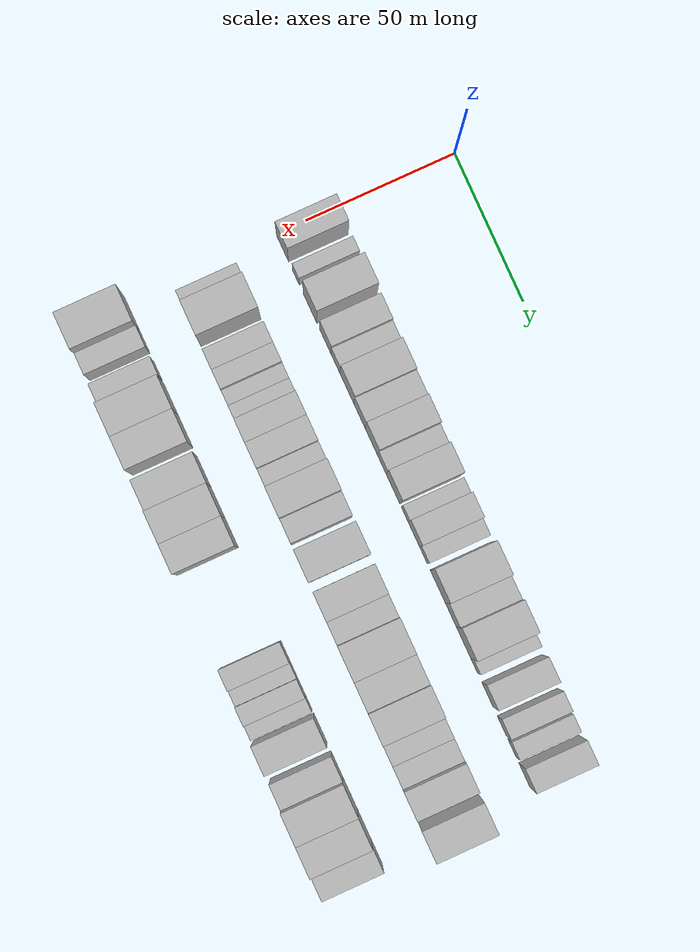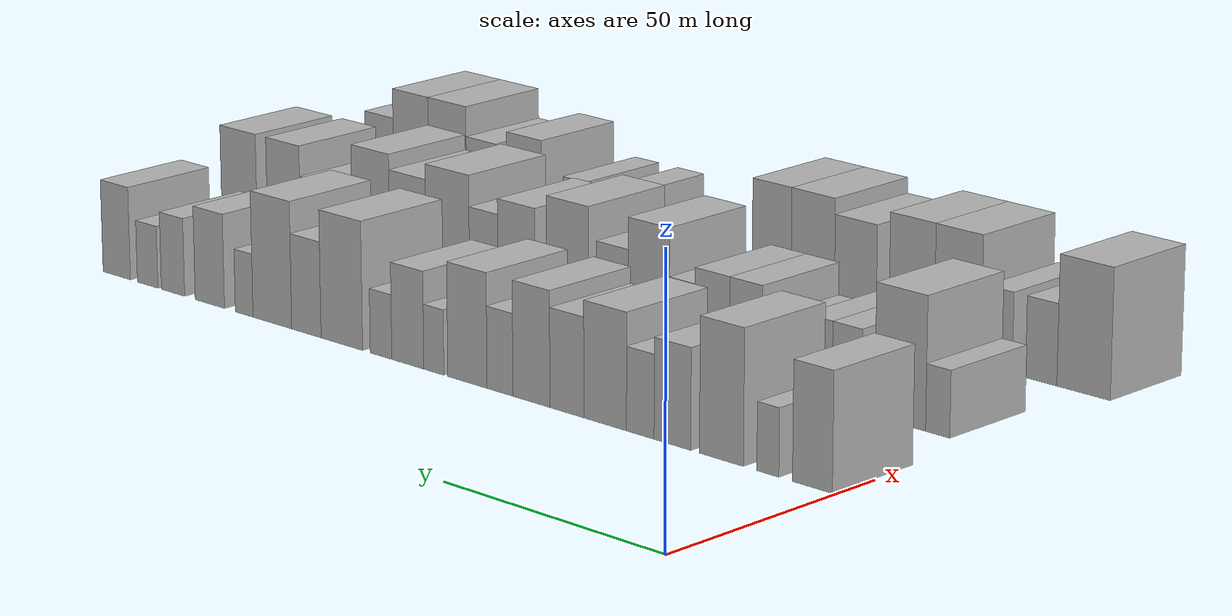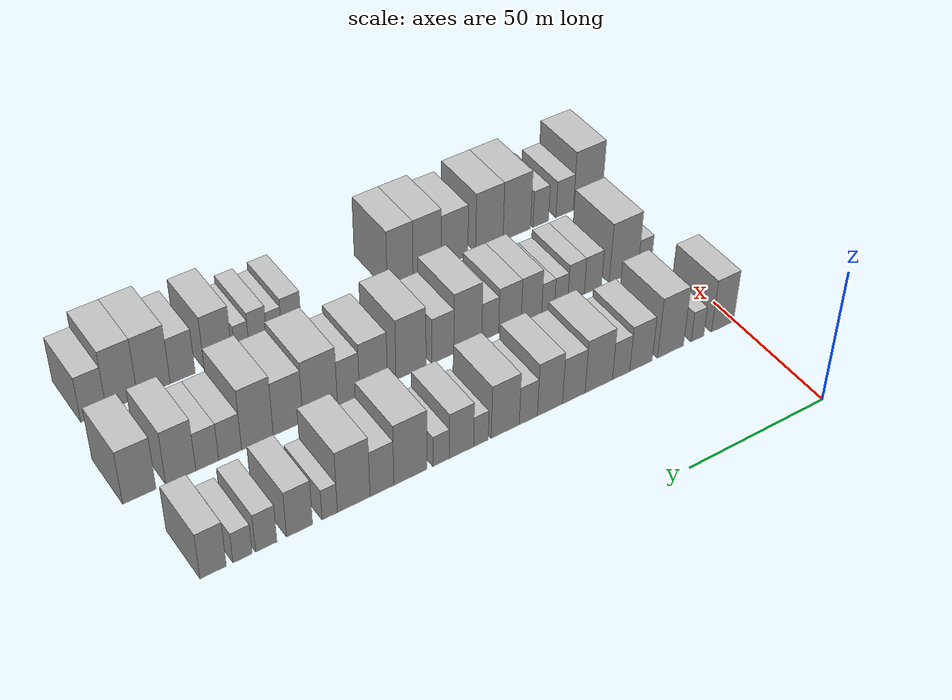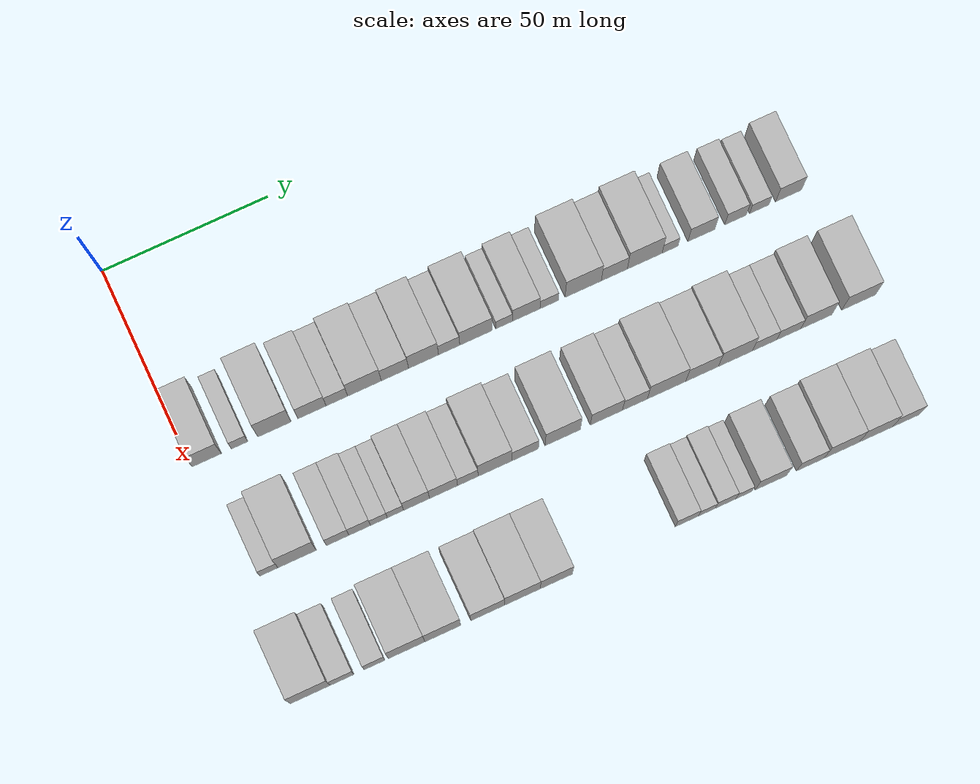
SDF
<sdf version="1.6">
 <world name="default">
  <model name="building_38">
   <static>1</static>
   <pose>50.0000 4.8962 0 0.000000 0.000000 0.000000</pose>
   <link name="link">
    <pose>0 0 10.50 0 0 0</pose>
    <collision name="collision"><geometry><box><size>20.0000 8.7420 21.0000</size></box></geometry></collision>
    <visual name="visual">
     <cast_shadows>0</cast_shadows>
     <geometry><box><size>20.0000 8.7420 21.0000</size></box></geometry>
     <material>
      <script>
       <uri>model://HANNAS_wall/materials/scripts</uri>
       <uri>model://HANNAS_wall/materials/textures</uri>
       <name>vrc/HANNAS_wall</name>
      </script>
     </material>
    </visual>
   </link>
  </model>
  <model name="building_39">
   <static>1</static>
   <pose>50.0000 14.7177 0 0.000000 0.000000 0.000000</pose>
   <link name="link">
    <pose>0 0 6.00 0 0 0</pose>
    <collision name="collision"><geometry><box><size>20.0000 4.9009 12.0000</size></box></geometry></collision>
    <visual name="visual">
     <cast_shadows>0</cast_shadows>
     <geometry><box><size>20.0000 4.9009 12.0000</size></box></geometry>
     <material>
      <script>
       <uri>model://HANNAS_wall/materials/scripts</uri>
       <uri>model://HANNAS_wall/materials/textures</uri>
       <name>vrc/HANNAS_wall</name>
      </script>
     </material>
    </visual>
   </link>
  </model>
  <model name="building_40">
   <static>1</static>
   <pose>50.0000 25.1463 0 0.000000 0.000000 0.000000</pose>
   <link name="link">
    <pose>0 0 12.00 0 0 0</pose>
    <collision name="collision"><geometry><box><size>20.0000 9.9563 24.0000</size></box></geometry></collision>
    <visual name="visual">
     <cast_shadows>0</cast_shadows>
     <geometry><box><size>20.0000 9.9563 24.0000</size></box></geometry>
     <material>
      <script>
       <uri>model://HANNAS_wall/materials/scripts</uri>
       <uri>model://HANNAS_wall/materials/textures</uri>
       <name>vrc/HANNAS_wall</name>
      </script>
     </material>
    </visual>
   </link>
  </model>
  <model name="building_41">
   <static>1</static>
   <pose>50.0000 36.3663 0 0.000000 0.000000 0.000000</pose>
   <link name="link">
    <pose>0 0 9.00 0 0 0</pose>
    <collision name="collision"><geometry><box><size>20.0000 8.4837 18.0000</size></box></geometry></collision>
    <visual name="visual">
     <cast_shadows>0</cast_shadows>
     <geometry><box><size>20.0000 8.4837 18.0000</size></box></geometry>
     <material>
      <script>
       <uri>model://HANNAS_wall/materials/scripts</uri>
       <uri>model://HANNAS_wall/materials/textures</uri>
       <name>vrc/HANNAS_wall</name>
      </script>
     </material>
    </visual>
   </link>
  </model>
  <model name="building_42">
   <static>1</static>
   <pose>50.0000 43.8344 0 0.000000 0.000000 0.000000</pose>
   <link name="link">
    <pose>0 0 7.50 0 0 0</pose>
    <collision name="collision"><geometry><box><size>20.0000 6.4525 15.0000</size></box></geometry></collision>
    <visual name="visual">
     <cast_shadows>0</cast_shadows>
     <geometry><box><size>20.0000 6.4525 15.0000</size></box></geometry>
     <material>
      <script>
       <uri>model://HANNAS_wall/materials/scripts</uri>
       <uri>model://HANNAS_wall/materials/textures</uri>
       <name>vrc/HANNAS_wall</name>
      </script>
     </material>
    </visual>
   </link>
  </model>
  <model name="building_43">
   <static>1</static>
   <pose>50.0000 52.1158 0 0.000000 0.000000 0.000000</pose>
   <link name="link">
    <pose>0 0 10.50 0 0 0</pose>
    <collision name="collision"><geometry><box><size>20.0000 10.1102 21.0000</size></box></geometry></collision>
    <visual name="visual">
     <cast_shadows>0</cast_shadows>
     <geometry><box><size>20.0000 10.1102 21.0000</size></box></geometry>
     <material>
      <script>
       <uri>model://HANNAS_wall/materials/scripts</uri>
       <uri>model://HANNAS_wall/materials/textures</uri>
       <name>vrc/HANNAS_wall</name>
      </script>
     </material>
    </visual>
   </link>
  </model>
  <model name="building_44">
   <static>1</static>
   <pose>50.0000 61.2699 0 0.000000 0.000000 0.000000</pose>
   <link name="link">
    <pose>0 0 9.00 0 0 0</pose>
    <collision name="collision"><geometry><box><size>20.0000 8.1979 18.0000</size></box></geometry></collision>
    <visual name="visual">
     <cast_shadows>0</cast_shadows>
     <geometry><box><size>20.0000 8.1979 18.0000</size></box></geometry>
     <material>
      <script>
       <uri>model://HANNAS_wall/materials/scripts</uri>
       <uri>model://HANNAS_wall/materials/textures</uri>
       <name>vrc/HANNAS_wall</name>
      </script>
     </material>
    </visual>
   </link>
  </model>
  <model name="building_45">
   <static>1</static>
   <pose>50.0000 69.8804 0 0.000000 0.000000 0.000000</pose>
   <link name="link">
    <pose>0 0 10.50 0 0 0</pose>
    <collision name="collision"><geometry><box><size>20.0000 9.0231 21.0000</size></box></geometry></collision>
    <visual name="visual">
     <cast_shadows>0</cast_shadows>
     <geometry><box><size>20.0000 9.0231 21.0000</size></box></geometry>
     <material>
      <script>
       <uri>model://HANNAS_wall/materials/scripts</uri>
       <uri>model://HANNAS_wall/materials/textures</uri>
       <name>vrc/HANNAS_wall</name>
      </script>
     </material>
    </visual>
   </link>
  </model>
  <model name="building_46">
   <static>1</static>
   <pose>50.0000 77.6053 0 0.000000 0.000000 0.000000</pose>
   <link name="link">
    <pose>0 0 7.50 0 0 0</pose>
    <collision name="collision"><geometry><box><size>20.0000 6.4268 15.0000</size></box></geometry></collision>
    <visual name="visual">
     <cast_shadows>0</cast_shadows>
     <geometry><box><size>20.0000 6.4268 15.0000</size></box></geometry>
     <material>
      <script>
       <uri>model://HANNAS_wall/materials/scripts</uri>
       <uri>model://HANNAS_wall/materials/textures</uri>
       <name>vrc/HANNAS_wall</name>
      </script>
     </material>
    </visual>
   </link>
  </model>
  <model name="building_47">
   <static>1</static>
   <pose>50.0000 85.7421 0 0.000000 0.000000 0.000000</pose>
   <link name="link">
    <pose>0 0 10.50 0 0 0</pose>
    <collision name="collision"><geometry><box><size>20.0000 9.8468 21.0000</size></box></geometry></collision>
    <visual name="visual">
     <cast_shadows>0</cast_shadows>
     <geometry><box><size>20.0000 9.8468 21.0000</size></box></geometry>
     <material>
      <script>
       <uri>model://HANNAS_wall/materials/scripts</uri>
       <uri>model://HANNAS_wall/materials/textures</uri>
       <name>vrc/HANNAS_wall</name>
      </script>
     </material>
    </visual>
   </link>
  </model>
  <model name="building_48">
   <static>1</static>
   <pose>50.0000 94.1984 0 0.000000 0.000000 0.000000</pose>
   <link name="link">
    <pose>0 0 6.00 0 0 0</pose>
    <collision name="collision"><geometry><box><size>20.0000 5.0657 12.0000</size></box></geometry></collision>
    <visual name="visual">
     <cast_shadows>0</cast_shadows>
     <geometry><box><size>20.0000 5.0657 12.0000</size></box></geometry>
     <material>
      <script>
       <uri>model://HANNAS_wall/materials/scripts</uri>
       <uri>model://HANNAS_wall/materials/textures</uri>
       <name>vrc/HANNAS_wall</name>
      </script>
     </material>
    </visual>
   </link>
  </model>
  <model name="building_49">
   <static>1</static>
   <pose>50.0000 100.8727 0 0.000000 0.000000 0.000000</pose>
   <link name="link">
    <pose>0 0 9.00 0 0 0</pose>
    <collision name="collision"><geometry><box><size>20.0000 8.2829 18.0000</size></box></geometry></collision>
    <visual name="visual">
     <cast_shadows>0</cast_shadows>
     <geometry><box><size>20.0000 8.2829 18.0000</size></box></geometry>
     <material>
      <script>
       <uri>model://HANNAS_wall/materials/scripts</uri>
       <uri>model://HANNAS_wall/materials/textures</uri>
       <name>vrc/HANNAS_wall</name>
      </script>
     </material>
    </visual>
   </link>
  </model>
  <model name="building_50">
   <static>1</static>
   <pose>50.0000 107.8115 0 0.000000 0.000000 0.000000</pose>
   <link name="link">
    <pose>0 0 6.00 0 0 0</pose>
    <collision name="collision"><geometry><box><size>20.0000 5.5947 12.0000</size></box></geometry></collision>
    <visual name="visual">
     <cast_shadows>0</cast_shadows>
     <geometry><box><size>20.0000 5.5947 12.0000</size></box></geometry>
     <material>
      <script>
       <uri>model://HANNAS_wall/materials/scripts</uri>
       <uri>model://HANNAS_wall/materials/textures</uri>
       <name>vrc/HANNAS_wall</name>
      </script>
     </material>
    </visual>
   </link>
  </model>
  <model name="building_51">
   <static>1</static>
   <pose>50.0000 118.1007 0 0.000000 0.000000 0.000000</pose>
   <link name="link">
    <pose>0 0 12.00 0 0 0</pose>
    <collision name="collision"><geometry><box><size>20.0000 10.9835 24.0000</size></box></geometry></collision>
    <visual name="visual">
     <cast_shadows>0</cast_shadows>
     <geometry><box><size>20.0000 10.9835 24.0000</size></box></geometry>
     <material>
      <script>
       <uri>model://HANNAS_wall/materials/scripts</uri>
       <uri>model://HANNAS_wall/materials/textures</uri>
       <name>vrc/HANNAS_wall</name>
      </script>
     </material>
    </visual>
   </link>
  </model>
  <model name="building_52">
   <static>1</static>
   <pose>50.0000 127.5272 0 0.000000 0.000000 0.000000</pose>
   <link name="link">
    <pose>0 0 9.00 0 0 0</pose>
    <collision name="collision"><geometry><box><size>20.0000 7.8695 18.0000</size></box></geometry></collision>
    <visual name="visual">
     <cast_shadows>0</cast_shadows>
     <geometry><box><size>20.0000 7.8695 18.0000</size></box></geometry>
     <material>
      <script>
       <uri>model://HANNAS_wall/materials/scripts</uri>
       <uri>model://HANNAS_wall/materials/textures</uri>
       <name>vrc/HANNAS_wall</name>
      </script>
     </material>
    </visual>
   </link>
  </model>
  <model name="building_53">
   <static>1</static>
   <pose>50.0000 136.7461 0 0.000000 0.000000 0.000000</pose>
   <link name="link">
    <pose>0 0 12.00 0 0 0</pose>
    <collision name="collision"><geometry><box><size>20.0000 10.5684 24.0000</size></box></geometry></collision>
    <visual name="visual">
     <cast_shadows>0</cast_shadows>
     <geometry><box><size>20.0000 10.5684 24.0000</size></box></geometry>
     <material>
      <script>
       <uri>model://HANNAS_wall/materials/scripts</uri>
       <uri>model://HANNAS_wall/materials/textures</uri>
       <name>vrc/HANNAS_wall</name>
      </script>
     </material>
    </visual>
   </link>
  </model>
  <model name="building_54">
   <static>1</static>
   <pose>50.0000 144.4675 0 0.000000 0.000000 0.000000</pose>
   <link name="link">
    <pose>0 0 6.00 0 0 0</pose>
    <collision name="collision"><geometry><box><size>20.0000 4.8745 12.0000</size></box></geometry></collision>
    <visual name="visual">
     <cast_shadows>0</cast_shadows>
     <geometry><box><size>20.0000 4.8745 12.0000</size></box></geometry>
     <material>
      <script>
       <uri>model://HANNAS_wall/materials/scripts</uri>
       <uri>model://HANNAS_wall/materials/textures</uri>
       <name>vrc/HANNAS_wall</name>
      </script>
     </material>
    </visual>
   </link>
  </model>
  <model name="building_55">
   <static>1</static>
   <pose>50.0000 154.0031 0 0.000000 0.000000 0.000000</pose>
   <link name="link">
    <pose>0 0 9.00 0 0 0</pose>
    <collision name="collision"><geometry><box><size>20.0000 8.1967 18.0000</size></box></geometry></collision>
    <visual name="visual">
     <cast_shadows>0</cast_shadows>
     <geometry><box><size>20.0000 8.1967 18.0000</size></box></geometry>
     <material>
      <script>
       <uri>model://HANNAS_wall/materials/scripts</uri>
       <uri>model://HANNAS_wall/materials/textures</uri>
       <name>vrc/HANNAS_wall</name>
      </script>
     </material>
    </visual>
   </link>
  </model>
  <model name="building_56">
   <static>1</static>
   <pose>50.0000 164.4056 0 0.000000 0.000000 0.000000</pose>
   <link name="link">
    <pose>0 0 7.50 0 0 0</pose>
    <collision name="collision"><geometry><box><size>20.0000 6.6082 15.0000</size></box></geometry></collision>
    <visual name="visual">
     <cast_shadows>0</cast_shadows>
     <geometry><box><size>20.0000 6.6082 15.0000</size></box></geometry>
     <material>
      <script>
       <uri>model://HANNAS_wall/materials/scripts</uri>
       <uri>model://HANNAS_wall/materials/textures</uri>
       <name>vrc/HANNAS_wall</name>
      </script>
     </material>
    </visual>
   </link>
  </model>
  <model name="building_57">
   <static>1</static>
   <pose>50.0000 171.6649 0 0.000000 0.000000 0.000000</pose>
   <link name="link">
    <pose>0 0 6.00 0 0 0</pose>
    <collision name="collision"><geometry><box><size>20.0000 5.9103 12.0000</size></box></geometry></collision>
    <visual name="visual">
     <cast_shadows>0</cast_shadows>
     <geometry><box><size>20.0000 5.9103 12.0000</size></box></geometry>
     <material>
      <script>
       <uri>model://HANNAS_wall/materials/scripts</uri>
       <uri>model://HANNAS_wall/materials/textures</uri>
       <name>vrc/HANNAS_wall</name>
      </script>
     </material>
    </visual>
   </link>
  </model>
  <model name="building_58">
   <static>1</static>
   <pose>50.0000 180.5965 0 0.000000 0.000000 0.000000</pose>
   <link name="link">
    <pose>0 0 9.00 0 0 0</pose>
    <collision name="collision"><geometry><box><size>20.0000 7.9528 18.0000</size></box></geometry></collision>
    <visual name="visual">
     <cast_shadows>0</cast_shadows>
     <geometry><box><size>20.0000 7.9528 18.0000</size></box></geometry>
     <material>
      <script>
       <uri>model://HANNAS_wall/materials/scripts</uri>
       <uri>model://HANNAS_wall/materials/textures</uri>
       <name>vrc/HANNAS_wall</name>
      </script>
     </material>
    </visual>
   </link>
  </model>
  <model name="building_122">
   <static>1</static>
   <pose>85.0000 7.8334 0 0.000000 0.000000 0.000000</pose>
   <link name="link">
    <pose>0 0 6.00 0 0 0</pose>
    <collision name="collision"><geometry><box><size>20.0000 5.3609 12.0000</size></box></geometry></collision>
    <visual name="visual">
     <cast_shadows>0</cast_shadows>
     <geometry><box><size>20.0000 5.3609 12.0000</size></box></geometry>
     <material>
      <script>
       <uri>model://HANNAS_wall/materials/scripts</uri>
       <uri>model://HANNAS_wall/materials/textures</uri>
       <name>vrc/HANNAS_wall</name>
      </script>
     </material>
    </visual>
   </link>
  </model>
  <model name="building_123">
   <static>1</static>
   <pose>85.0000 16.2155 0 0.000000 0.000000 0.000000</pose>
   <link name="link">
    <pose>0 0 12.00 0 0 0</pose>
    <collision name="collision"><geometry><box><size>20.0000 11.4034 24.0000</size></box></geometry></collision>
    <visual name="visual">
     <cast_shadows>0</cast_shadows>
     <geometry><box><size>20.0000 11.4034 24.0000</size></box></geometry>
     <material>
      <script>
       <uri>model://HANNAS_wall/materials/scripts</uri>
       <uri>model://HANNAS_wall/materials/textures</uri>
       <name>vrc/HANNAS_wall</name>
      </script>
     </material>
    </visual>
   </link>
  </model>
  <model name="building_124">
   <static>1</static>
   <pose>85.0000 28.2920 0 0.000000 0.000000 0.000000</pose>
   <link name="link">
    <pose>0 0 7.50 0 0 0</pose>
    <collision name="collision"><geometry><box><size>20.0000 6.7495 15.0000</size></box></geometry></collision>
    <visual name="visual">
     <cast_shadows>0</cast_shadows>
     <geometry><box><size>20.0000 6.7495 15.0000</size></box></geometry>
     <material>
      <script>
       <uri>model://HANNAS_wall/materials/scripts</uri>
       <uri>model://HANNAS_wall/materials/textures</uri>
       <name>vrc/HANNAS_wall</name>
      </script>
     </material>
    </visual>
   </link>
  </model>
  <model name="building_125">
   <static>1</static>
   <pose>85.0000 34.8657 0 0.000000 0.000000 0.000000</pose>
   <link name="link">
    <pose>0 0 7.50 0 0 0</pose>
    <collision name="collision"><geometry><box><size>20.0000 6.3980 15.0000</size></box></geometry></collision>
    <visual name="visual">
     <cast_shadows>0</cast_shadows>
     <geometry><box><size>20.0000 6.3980 15.0000</size></box></geometry>
     <material>
      <script>
       <uri>model://HANNAS_wall/materials/scripts</uri>
       <uri>model://HANNAS_wall/materials/textures</uri>
       <name>vrc/HANNAS_wall</name>
      </script>
     </material>
    </visual>
   </link>
  </model>
  <model name="building_126">
   <static>1</static>
   <pose>85.0000 40.5719 0 0.000000 0.000000 0.000000</pose>
   <link name="link">
    <pose>0 0 6.00 0 0 0</pose>
    <collision name="collision"><geometry><box><size>20.0000 5.0143 12.0000</size></box></geometry></collision>
    <visual name="visual">
     <cast_shadows>0</cast_shadows>
     <geometry><box><size>20.0000 5.0143 12.0000</size></box></geometry>
     <material>
      <script>
       <uri>model://HANNAS_wall/materials/scripts</uri>
       <uri>model://HANNAS_wall/materials/textures</uri>
       <name>vrc/HANNAS_wall</name>
      </script>
     </material>
    </visual>
   </link>
  </model>
  <model name="building_127">
   <static>1</static>
   <pose>85.0000 45.5158 0 0.000000 0.000000 0.000000</pose>
   <link name="link">
    <pose>0 0 6.00 0 0 0</pose>
    <collision name="collision"><geometry><box><size>20.0000 4.8736 12.0000</size></box></geometry></collision>
    <visual name="visual">
     <cast_shadows>0</cast_shadows>
     <geometry><box><size>20.0000 4.8736 12.0000</size></box></geometry>
     <material>
      <script>
       <uri>model://HANNAS_wall/materials/scripts</uri>
       <uri>model://HANNAS_wall/materials/textures</uri>
       <name>vrc/HANNAS_wall</name>
      </script>
     </material>
    </visual>
   </link>
  </model>
  <model name="building_128">
   <static>1</static>
   <pose>85.0000 51.8381 0 0.000000 0.000000 0.000000</pose>
   <link name="link">
    <pose>0 0 9.00 0 0 0</pose>
    <collision name="collision"><geometry><box><size>20.0000 7.7709 18.0000</size></box></geometry></collision>
    <visual name="visual">
     <cast_shadows>0</cast_shadows>
     <geometry><box><size>20.0000 7.7709 18.0000</size></box></geometry>
     <material>
      <script>
       <uri>model://HANNAS_wall/materials/scripts</uri>
       <uri>model://HANNAS_wall/materials/textures</uri>
       <name>vrc/HANNAS_wall</name>
      </script>
     </material>
    </visual>
   </link>
  </model>
  <model name="building_129">
   <static>1</static>
   <pose>85.0000 59.9154 0 0.000000 0.000000 0.000000</pose>
   <link name="link">
    <pose>0 0 9.00 0 0 0</pose>
    <collision name="collision"><geometry><box><size>20.0000 8.3837 18.0000</size></box></geometry></collision>
    <visual name="visual">
     <cast_shadows>0</cast_shadows>
     <geometry><box><size>20.0000 8.3837 18.0000</size></box></geometry>
     <material>
      <script>
       <uri>model://HANNAS_wall/materials/scripts</uri>
       <uri>model://HANNAS_wall/materials/textures</uri>
       <name>vrc/HANNAS_wall</name>
      </script>
     </material>
    </visual>
   </link>
  </model>
  <model name="building_130">
   <static>1</static>
   <pose>85.0000 67.2110 0 0.000000 0.000000 0.000000</pose>
   <link name="link">
    <pose>0 0 7.50 0 0 0</pose>
    <collision name="collision"><geometry><box><size>20.0000 6.2076 15.0000</size></box></geometry></collision>
    <visual name="visual">
     <cast_shadows>0</cast_shadows>
     <geometry><box><size>20.0000 6.2076 15.0000</size></box></geometry>
     <material>
      <script>
       <uri>model://HANNAS_wall/materials/scripts</uri>
       <uri>model://HANNAS_wall/materials/textures</uri>
       <name>vrc/HANNAS_wall</name>
      </script>
     </material>
    </visual>
   </link>
  </model>
  <model name="building_131">
   <static>1</static>
   <pose>85.0000 75.3964 0 0.000000 0.000000 0.000000</pose>
   <link name="link">
    <pose>0 0 12.00 0 0 0</pose>
    <collision name="collision"><geometry><box><size>20.0000 10.1631 24.0000</size></box></geometry></collision>
    <visual name="visual">
     <cast_shadows>0</cast_shadows>
     <geometry><box><size>20.0000 10.1631 24.0000</size></box></geometry>
     <material>
      <script>
       <uri>model://HANNAS_wall/materials/scripts</uri>
       <uri>model://HANNAS_wall/materials/textures</uri>
       <name>vrc/HANNAS_wall</name>
      </script>
     </material>
    </visual>
   </link>
  </model>
  <model name="building_132">
   <static>1</static>
   <pose>85.0000 84.4402 0 0.000000 0.000000 0.000000</pose>
   <link name="link">
    <pose>0 0 9.00 0 0 0</pose>
    <collision name="collision"><geometry><box><size>20.0000 7.9245 18.0000</size></box></geometry></collision>
    <visual name="visual">
     <cast_shadows>0</cast_shadows>
     <geometry><box><size>20.0000 7.9245 18.0000</size></box></geometry>
     <material>
      <script>
       <uri>model://HANNAS_wall/materials/scripts</uri>
       <uri>model://HANNAS_wall/materials/textures</uri>
       <name>vrc/HANNAS_wall</name>
      </script>
     </material>
    </visual>
   </link>
  </model>
  <model name="building_133">
   <static>1</static>
   <pose>85.0000 95.7066 0 0.000000 0.000000 0.000000</pose>
   <link name="link">
    <pose>0 0 12.00 0 0 0</pose>
    <collision name="collision"><geometry><box><size>20.0000 10.6085 24.0000</size></box></geometry></collision>
    <visual name="visual">
     <cast_shadows>0</cast_shadows>
     <geometry><box><size>20.0000 10.6085 24.0000</size></box></geometry>
     <material>
      <script>
       <uri>model://HANNAS_wall/materials/scripts</uri>
       <uri>model://HANNAS_wall/materials/textures</uri>
       <name>vrc/HANNAS_wall</name>
      </script>
     </material>
    </visual>
   </link>
  </model>
  <model name="building_134">
   <static>1</static>
   <pose>85.0000 108.8487 0 0.000000 0.000000 0.000000</pose>
   <link name="link">
    <pose>0 0 10.50 0 0 0</pose>
    <collision name="collision"><geometry><box><size>20.0000 9.6756 21.0000</size></box></geometry></collision>
    <visual name="visual">
     <cast_shadows>0</cast_shadows>
     <geometry><box><size>20.0000 9.6756 21.0000</size></box></geometry>
     <material>
      <script>
       <uri>model://HANNAS_wall/materials/scripts</uri>
       <uri>model://HANNAS_wall/materials/textures</uri>
       <name>vrc/HANNAS_wall</name>
      </script>
     </material>
    </visual>
   </link>
  </model>
  <model name="building_135">
   <static>1</static>
   <pose>85.0000 117.4447 0 0.000000 0.000000 0.000000</pose>
   <link name="link">
    <pose>0 0 9.00 0 0 0</pose>
    <collision name="collision"><geometry><box><size>20.0000 7.5165 18.0000</size></box></geometry></collision>
    <visual name="visual">
     <cast_shadows>0</cast_shadows>
     <geometry><box><size>20.0000 7.5165 18.0000</size></box></geometry>
     <material>
      <script>
       <uri>model://HANNAS_wall/materials/scripts</uri>
       <uri>model://HANNAS_wall/materials/textures</uri>
       <name>vrc/HANNAS_wall</name>
      </script>
     </material>
    </visual>
   </link>
  </model>
  <model name="building_136">
   <static>1</static>
   <pose>85.0000 127.0059 0 0.000000 0.000000 0.000000</pose>
   <link name="link">
    <pose>0 0 12.00 0 0 0</pose>
    <collision name="collision"><geometry><box><size>20.0000 11.6059 24.0000</size></box></geometry></collision>
    <visual name="visual">
     <cast_shadows>0</cast_shadows>
     <geometry><box><size>20.0000 11.6059 24.0000</size></box></geometry>
     <material>
      <script>
       <uri>model://HANNAS_wall/materials/scripts</uri>
       <uri>model://HANNAS_wall/materials/textures</uri>
       <name>vrc/HANNAS_wall</name>
      </script>
     </material>
    </visual>
   </link>
  </model>
  <model name="building_137">
   <static>1</static>
   <pose>85.0000 137.7514 0 0.000000 0.000000 0.000000</pose>
   <link name="link">
    <pose>0 0 10.50 0 0 0</pose>
    <collision name="collision"><geometry><box><size>20.0000 9.8850 21.0000</size></box></geometry></collision>
    <visual name="visual">
     <cast_shadows>0</cast_shadows>
     <geometry><box><size>20.0000 9.8850 21.0000</size></box></geometry>
     <material>
      <script>
       <uri>model://HANNAS_wall/materials/scripts</uri>
       <uri>model://HANNAS_wall/materials/textures</uri>
       <name>vrc/HANNAS_wall</name>
      </script>
     </material>
    </visual>
   </link>
  </model>
  <model name="building_138">
   <static>1</static>
   <pose>85.0000 147.8547 0 0.000000 0.000000 0.000000</pose>
   <link name="link">
    <pose>0 0 12.00 0 0 0</pose>
    <collision name="collision"><geometry><box><size>20.0000 10.3217 24.0000</size></box></geometry></collision>
    <visual name="visual">
     <cast_shadows>0</cast_shadows>
     <geometry><box><size>20.0000 10.3217 24.0000</size></box></geometry>
     <material>
      <script>
       <uri>model://HANNAS_wall/materials/scripts</uri>
       <uri>model://HANNAS_wall/materials/textures</uri>
       <name>vrc/HANNAS_wall</name>
      </script>
     </material>
    </visual>
   </link>
  </model>
  <model name="building_139">
   <static>1</static>
   <pose>85.0000 156.7014 0 0.000000 0.000000 0.000000</pose>
   <link name="link">
    <pose>0 0 7.50 0 0 0</pose>
    <collision name="collision"><geometry><box><size>20.0000 7.3718 15.0000</size></box></geometry></collision>
    <visual name="visual">
     <cast_shadows>0</cast_shadows>
     <geometry><box><size>20.0000 7.3718 15.0000</size></box></geometry>
     <material>
      <script>
       <uri>model://HANNAS_wall/materials/scripts</uri>
       <uri>model://HANNAS_wall/materials/textures</uri>
       <name>vrc/HANNAS_wall</name>
      </script>
     </material>
    </visual>
   </link>
  </model>
  <model name="building_140">
   <static>1</static>
   <pose>85.0000 164.0363 0 0.000000 0.000000 0.000000</pose>
   <link name="link">
    <pose>0 0 7.50 0 0 0</pose>
    <collision name="collision"><geometry><box><size>20.0000 7.2979 15.0000</size></box></geometry></collision>
    <visual name="visual">
     <cast_shadows>0</cast_shadows>
     <geometry><box><size>20.0000 7.2979 15.0000</size></box></geometry>
     <material>
      <script>
       <uri>model://HANNAS_wall/materials/scripts</uri>
       <uri>model://HANNAS_wall/materials/textures</uri>
       <name>vrc/HANNAS_wall</name>
      </script>
     </material>
    </visual>
   </link>
  </model>
  <model name="building_141">
   <static>1</static>
   <pose>85.0000 172.4159 0 0.000000 0.000000 0.000000</pose>
   <link name="link">
    <pose>0 0 10.50 0 0 0</pose>
    <collision name="collision"><geometry><box><size>20.0000 9.4614 21.0000</size></box></geometry></collision>
    <visual name="visual">
     <cast_shadows>0</cast_shadows>
     <geometry><box><size>20.0000 9.4614 21.0000</size></box></geometry>
     <material>
      <script>
       <uri>model://HANNAS_wall/materials/scripts</uri>
       <uri>model://HANNAS_wall/materials/textures</uri>
       <name>vrc/HANNAS_wall</name>
      </script>
     </material>
    </visual>
   </link>
  </model>
  <model name="building_142">
   <static>1</static>
   <pose>85.0000 185.2955 0 0.000000 0.000000 0.000000</pose>
   <link name="link">
    <pose>0 0 10.50 0 0 0</pose>
    <collision name="collision"><geometry><box><size>20.0000 10.2978 21.0000</size></box></geometry></collision>
    <visual name="visual">
     <cast_shadows>0</cast_shadows>
     <geometry><box><size>20.0000 10.2978 21.0000</size></box></geometry>
     <material>
      <script>
       <uri>model://HANNAS_wall/materials/scripts</uri>
       <uri>model://HANNAS_wall/materials/textures</uri>
       <name>vrc/HANNAS_wall</name>
      </script>
     </material>
    </visual>
   </link>
  </model>
  <model name="building_202">
   <static>1</static>
   <pose>120.0000 4.3970 0 0.000000 0.000000 0.000000</pose>
   <link name="link">
    <pose>0 0 12.00 0 0 0</pose>
    <collision name="collision"><geometry><box><size>20.0000 11.8130 24.0000</size></box></geometry></collision>
    <visual name="visual">
     <cast_shadows>0</cast_shadows>
     <geometry><box><size>20.0000 11.8130 24.0000</size></box></geometry>
     <material>
      <script>
       <uri>model://HANNAS_wall/materials/scripts</uri>
       <uri>model://HANNAS_wall/materials/textures</uri>
       <name>vrc/HANNAS_wall</name>
      </script>
     </material>
    </visual>
   </link>
  </model>
  <model name="building_203">
   <static>1</static>
   <pose>120.0000 13.8263 0 0.000000 0.000000 0.000000</pose>
   <link name="link">
    <pose>0 0 7.50 0 0 0</pose>
    <collision name="collision"><geometry><box><size>20.0000 7.0456 15.0000</size></box></geometry></collision>
    <visual name="visual">
     <cast_shadows>0</cast_shadows>
     <geometry><box><size>20.0000 7.0456 15.0000</size></box></geometry>
     <material>
      <script>
       <uri>model://HANNAS_wall/materials/scripts</uri>
       <uri>model://HANNAS_wall/materials/textures</uri>
       <name>vrc/HANNAS_wall</name>
      </script>
     </material>
    </visual>
   </link>
  </model>
  <model name="building_204">
   <static>1</static>
   <pose>120.0000 23.4434 0 0.000000 0.000000 0.000000</pose>
   <link name="link">
    <pose>0 0 7.50 0 0 0</pose>
    <collision name="collision"><geometry><box><size>20.0000 6.1886 15.0000</size></box></geometry></collision>
    <visual name="visual">
     <cast_shadows>0</cast_shadows>
     <geometry><box><size>20.0000 6.1886 15.0000</size></box></geometry>
     <material>
      <script>
       <uri>model://HANNAS_wall/materials/scripts</uri>
       <uri>model://HANNAS_wall/materials/textures</uri>
       <name>vrc/HANNAS_wall</name>
      </script>
     </material>
    </visual>
   </link>
  </model>
  <model name="building_205">
   <static>1</static>
   <pose>120.0000 32.9704 0 0.000000 0.000000 0.000000</pose>
   <link name="link">
    <pose>0 0 12.00 0 0 0</pose>
    <collision name="collision"><geometry><box><size>20.0000 10.8655 24.0000</size></box></geometry></collision>
    <visual name="visual">
     <cast_shadows>0</cast_shadows>
     <geometry><box><size>20.0000 10.8655 24.0000</size></box></geometry>
     <material>
      <script>
       <uri>model://HANNAS_wall/materials/scripts</uri>
       <uri>model://HANNAS_wall/materials/textures</uri>
       <name>vrc/HANNAS_wall</name>
      </script>
     </material>
    </visual>
   </link>
  </model>
  <model name="building_206">
   <static>1</static>
   <pose>120.0000 43.7388 0 0.000000 0.000000 0.000000</pose>
   <link name="link">
    <pose>0 0 12.00 0 0 0</pose>
    <collision name="collision"><geometry><box><size>20.0000 10.6713 24.0000</size></box></geometry></collision>
    <visual name="visual">
     <cast_shadows>0</cast_shadows>
     <geometry><box><size>20.0000 10.6713 24.0000</size></box></geometry>
     <material>
      <script>
       <uri>model://HANNAS_wall/materials/scripts</uri>
       <uri>model://HANNAS_wall/materials/textures</uri>
       <name>vrc/HANNAS_wall</name>
      </script>
     </material>
    </visual>
   </link>
  </model>
  <model name="building_207">
   <static>1</static>
   <pose>120.0000 57.1319 0 0.000000 0.000000 0.000000</pose>
   <link name="link">
    <pose>0 0 10.50 0 0 0</pose>
    <collision name="collision"><geometry><box><size>20.0000 10.1150 21.0000</size></box></geometry></collision>
    <visual name="visual">
     <cast_shadows>0</cast_shadows>
     <geometry><box><size>20.0000 10.1150 21.0000</size></box></geometry>
     <material>
      <script>
       <uri>model://HANNAS_wall/materials/scripts</uri>
       <uri>model://HANNAS_wall/materials/textures</uri>
       <name>vrc/HANNAS_wall</name>
      </script>
     </material>
    </visual>
   </link>
  </model>
  <model name="building_208">
   <static>1</static>
   <pose>120.0000 67.4763 0 0.000000 0.000000 0.000000</pose>
   <link name="link">
    <pose>0 0 12.00 0 0 0</pose>
    <collision name="collision"><geometry><box><size>20.0000 10.5737 24.0000</size></box></geometry></collision>
    <visual name="visual">
     <cast_shadows>0</cast_shadows>
     <geometry><box><size>20.0000 10.5737 24.0000</size></box></geometry>
     <material>
      <script>
       <uri>model://HANNAS_wall/materials/scripts</uri>
       <uri>model://HANNAS_wall/materials/textures</uri>
       <name>vrc/HANNAS_wall</name>
      </script>
     </material>
    </visual>
   </link>
  </model>
  <model name="building_209">
   <static>1</static>
   <pose>120.0000 77.5742 0 0.000000 0.000000 0.000000</pose>
   <link name="link">
    <pose>0 0 12.00 0 0 0</pose>
    <collision name="collision"><geometry><box><size>20.0000 9.6222 24.0000</size></box></geometry></collision>
    <visual name="visual">
     <cast_shadows>0</cast_shadows>
     <geometry><box><size>20.0000 9.6222 24.0000</size></box></geometry>
     <material>
      <script>
       <uri>model://HANNAS_wall/materials/scripts</uri>
       <uri>model://HANNAS_wall/materials/textures</uri>
       <name>vrc/HANNAS_wall</name>
      </script>
     </material>
    </visual>
   </link>
  </model>
  <model name="building_210">
   <static>1</static>
   <pose>120.0000 116.7244 0 0.000000 0.000000 0.000000</pose>
   <link name="link">
    <pose>0 0 7.50 0 0 0</pose>
    <collision name="collision"><geometry><box><size>20.0000 6.8927 15.0000</size></box></geometry></collision>
    <visual name="visual">
     <cast_shadows>0</cast_shadows>
     <geometry><box><size>20.0000 6.8927 15.0000</size></box></geometry>
     <material>
      <script>
       <uri>model://HANNAS_wall/materials/scripts</uri>
       <uri>model://HANNAS_wall/materials/textures</uri>
       <name>vrc/HANNAS_wall</name>
      </script>
     </material>
    </visual>
   </link>
  </model>
  <model name="building_211">
   <static>1</static>
   <pose>120.0000 122.7223 0 0.000000 0.000000 0.000000</pose>
   <link name="link">
    <pose>0 0 6.00 0 0 0</pose>
    <collision name="collision"><geometry><box><size>20.0000 5.1030 12.0000</size></box></geometry></collision>
    <visual name="visual">
     <cast_shadows>0</cast_shadows>
     <geometry><box><size>20.0000 5.1030 12.0000</size></box></geometry>
     <material>
      <script>
       <uri>model://HANNAS_wall/materials/scripts</uri>
       <uri>model://HANNAS_wall/materials/textures</uri>
       <name>vrc/HANNAS_wall</name>
      </script>
     </material>
    </visual>
   </link>
  </model>
  <model name="building_212">
   <static>1</static>
   <pose>120.0000 128.3716 0 0.000000 0.000000 0.000000</pose>
   <link name="link">
    <pose>0 0 7.50 0 0 0</pose>
    <collision name="collision"><geometry><box><size>20.0000 6.1955 15.0000</size></box></geometry></collision>
    <visual name="visual">
     <cast_shadows>0</cast_shadows>
     <geometry><box><size>20.0000 6.1955 15.0000</size></box></geometry>
     <material>
      <script>
       <uri>model://HANNAS_wall/materials/scripts</uri>
       <uri>model://HANNAS_wall/materials/textures</uri>
       <name>vrc/HANNAS_wall</name>
      </script>
     </material>
    </visual>
   </link>
  </model>
  <model name="building_213">
   <static>1</static>
   <pose>120.0000 133.8765 0 0.000000 0.000000 0.000000</pose>
   <link name="link">
    <pose>0 0 6.00 0 0 0</pose>
    <collision name="collision"><geometry><box><size>20.0000 4.8144 12.0000</size></box></geometry></collision>
    <visual name="visual">
     <cast_shadows>0</cast_shadows>
     <geometry><box><size>20.0000 4.8144 12.0000</size></box></geometry>
     <material>
      <script>
       <uri>model://HANNAS_wall/materials/scripts</uri>
       <uri>model://HANNAS_wall/materials/textures</uri>
       <name>vrc/HANNAS_wall</name>
      </script>
     </material>
    </visual>
   </link>
  </model>
  <model name="building_214">
   <static>1</static>
   <pose>120.0000 142.0227 0 0.000000 0.000000 0.000000</pose>
   <link name="link">
    <pose>0 0 10.50 0 0 0</pose>
    <collision name="collision"><geometry><box><size>20.0000 9.4781 21.0000</size></box></geometry></collision>
    <visual name="visual">
     <cast_shadows>0</cast_shadows>
     <geometry><box><size>20.0000 9.4781 21.0000</size></box></geometry>
     <material>
      <script>
       <uri>model://HANNAS_wall/materials/scripts</uri>
       <uri>model://HANNAS_wall/materials/textures</uri>
       <name>vrc/HANNAS_wall</name>
      </script>
     </material>
    </visual>
   </link>
  </model>
  <model name="building_215">
   <static>1</static>
   <pose>120.0000 153.9017 0 0.000000 0.000000 0.000000</pose>
   <link name="link">
    <pose>0 0 9.00 0 0 0</pose>
    <collision name="collision"><geometry><box><size>20.0000 8.2799 18.0000</size></box></geometry></collision>
    <visual name="visual">
     <cast_shadows>0</cast_shadows>
     <geometry><box><size>20.0000 8.2799 18.0000</size></box></geometry>
     <material>
      <script>
       <uri>model://HANNAS_wall/materials/scripts</uri>
       <uri>model://HANNAS_wall/materials/textures</uri>
       <name>vrc/HANNAS_wall</name>
      </script>
     </material>
    </visual>
   </link>
  </model>
  <model name="building_216">
   <static>1</static>
   <pose>120.0000 163.3993 0 0.000000 0.000000 0.000000</pose>
   <link name="link">
    <pose>0 0 12.00 0 0 0</pose>
    <collision name="collision"><geometry><box><size>20.0000 10.7155 24.0000</size></box></geometry></collision>
    <visual name="visual">
     <cast_shadows>0</cast_shadows>
     <geometry><box><size>20.0000 10.7155 24.0000</size></box></geometry>
     <material>
      <script>
       <uri>model://HANNAS_wall/materials/scripts</uri>
       <uri>model://HANNAS_wall/materials/textures</uri>
       <name>vrc/HANNAS_wall</name>
      </script>
     </material>
    </visual>
   </link>
  </model>
  <model name="building_217">
   <static>1</static>
   <pose>120.0000 173.7686 0 0.000000 0.000000 0.000000</pose>
   <link name="link">
    <pose>0 0 12.00 0 0 0</pose>
    <collision name="collision"><geometry><box><size>20.0000 10.0230 24.0000</size></box></geometry></collision>
    <visual name="visual">
     <cast_shadows>0</cast_shadows>
     <geometry><box><size>20.0000 10.0230 24.0000</size></box></geometry>
     <material>
      <script>
       <uri>model://HANNAS_wall/materials/scripts</uri>
       <uri>model://HANNAS_wall/materials/textures</uri>
       <name>vrc/HANNAS_wall</name>
      </script>
     </material>
    </visual>
   </link>
  </model>
  <model name="building_218">
   <static>1</static>
   <pose>120.0000 182.8776 0 0.000000 0.000000 0.000000</pose>
   <link name="link">
    <pose>0 0 9.00 0 0 0</pose>
    <collision name="collision"><geometry><box><size>20.0000 8.1950 18.0000</size></box></geometry></collision>
    <visual name="visual">
     <cast_shadows>0</cast_shadows>
     <geometry><box><size>20.0000 8.1950 18.0000</size></box></geometry>
     <material>
      <script>
       <uri>model://HANNAS_wall/materials/scripts</uri>
       <uri>model://HANNAS_wall/materials/textures</uri>
       <name>vrc/HANNAS_wall</name>
      </script>
     </material>
    </visual>
   </link>
  </model>
 </world>
</sdf>
